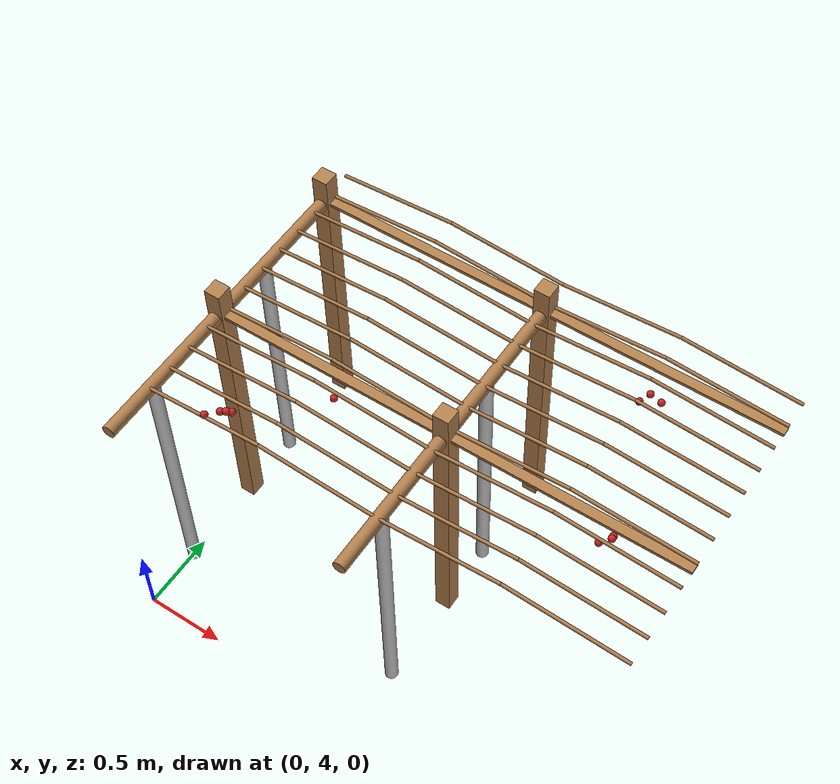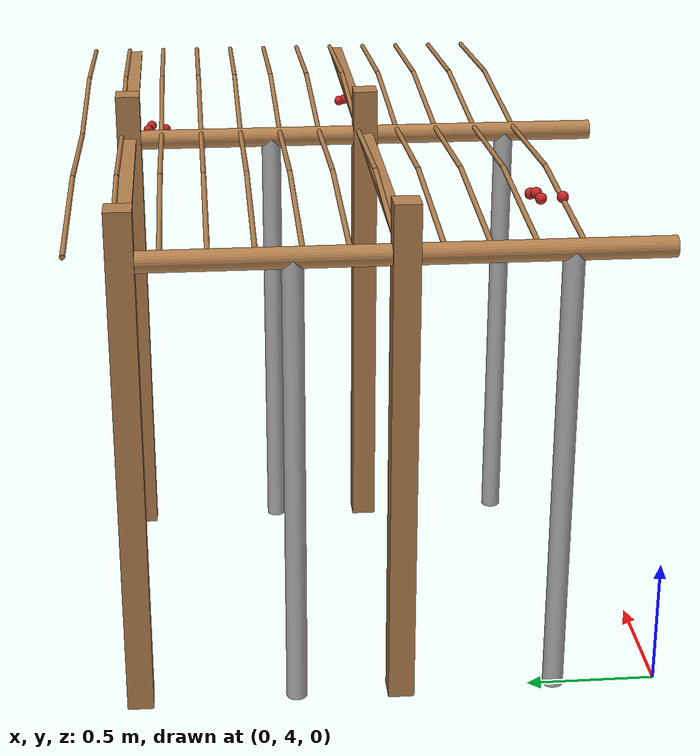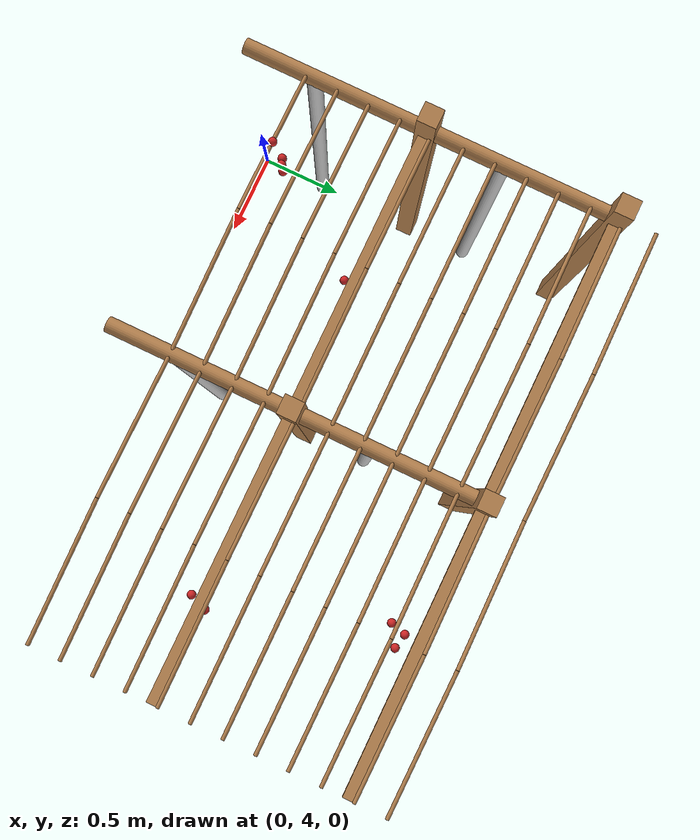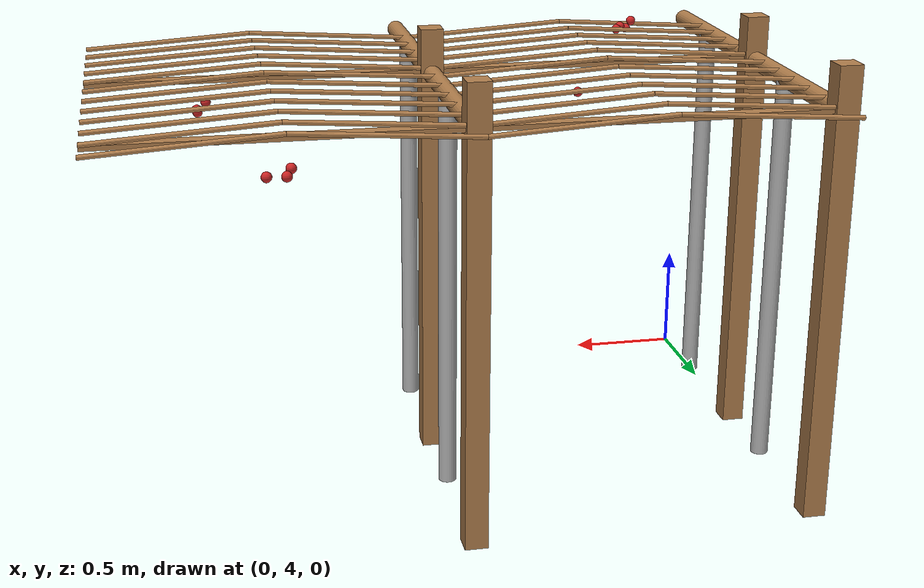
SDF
<sdf version="1.4">
 <model name="pergola">
  <include><name>post_5</name><pose>0.0 5.0 0 0 0 0</pose><uri>model://post</uri></include>
  <include><name>post_6</name><pose>0.0 6.0 0 0 0 0</pose><uri>model://post</uri></include>
  <include><name>post_16</name><pose>1.5 5.0 0 0 0 0</pose><uri>model://post</uri></include>
  <include><name>post_17</name><pose>1.5 6.0 0 0 0 0</pose><uri>model://post</uri></include>
  <link name="beam_5">
   <pose>0.75 5.0 1.81 0 0 0</pose>
   <collision name="collision"><geometry><box><size>1.5 0.06 0.02</size></box></geometry></collision>
   <visual name="visual">
    <geometry><box><size>1.5 0.06 0.02</size></box></geometry>
    <material><script><name>Gazebo/Wood</name></script></material>
   </visual>
   <inertial>
    <mass>5</mass>
    <inertia>
     <ixx>0.0016666666666666668</ixx>
     <ixy>0.0</ixy>
     <ixz>0.0</ixz>
     <iyy>0.9390000000000001</iyy>
     <iyz>0.0</iyz>
     <izz>0.9376666666666665</izz>
    </inertia>
   </inertial>
  </link>
  <link name="beam_6">
   <pose>0.75 6.0 1.81 0 0 0</pose>
   <collision name="collision"><geometry><box><size>1.5 0.06 0.02</size></box></geometry></collision>
   <visual name="visual">
    <geometry><box><size>1.5 0.06 0.02</size></box></geometry>
    <material><script><name>Gazebo/Wood</name></script></material>
   </visual>
   <inertial>
    <mass>5</mass>
    <inertia>
     <ixx>0.0016666666666666668</ixx>
     <ixy>0.0</ixy>
     <ixz>0.0</ixz>
     <iyy>0.9390000000000001</iyy>
     <iyz>0.0</iyz>
     <izz>0.9376666666666665</izz>
    </inertia>
   </inertial>
  </link>
  <link name="beam_16">
   <pose>2.25 5.0 1.81 0 0 0</pose>
   <collision name="collision"><geometry><box><size>1.5 0.06 0.02</size></box></geometry></collision>
   <visual name="visual">
    <geometry><box><size>1.5 0.06 0.02</size></box></geometry>
    <material><script><name>Gazebo/Wood</name></script></material>
   </visual>
   <inertial>
    <mass>5</mass>
    <inertia>
     <ixx>0.0016666666666666668</ixx>
     <ixy>0.0</ixy>
     <ixz>0.0</ixz>
     <iyy>0.9390000000000001</iyy>
     <iyz>0.0</iyz>
     <izz>0.9376666666666665</izz>
    </inertia>
   </inertial>
  </link>
  <link name="beam_17">
   <pose>2.25 6.0 1.81 0 0 0</pose>
   <collision name="collision"><geometry><box><size>1.5 0.06 0.02</size></box></geometry></collision>
   <visual name="visual">
    <geometry><box><size>1.5 0.06 0.02</size></box></geometry>
    <material><script><name>Gazebo/Wood</name></script></material>
   </visual>
   <inertial>
    <mass>5</mass>
    <inertia>
     <ixx>0.0016666666666666668</ixx>
     <ixy>0.0</ixy>
     <ixz>0.0</ixz>
     <iyy>0.9390000000000001</iyy>
     <iyz>0.0</iyz>
     <izz>0.9376666666666665</izz>
    </inertia>
   </inertial>
  </link>
  <include><name>tree_4</name><pose>0.0 4.4 0 0 0 0</pose><uri>model://tree_trunk</uri></include>
  <include><name>tree_5</name><pose>0.0 5.4 0 0 0 0</pose><uri>model://tree_trunk</uri></include>
  <include><name>tree_14</name><pose>1.5 4.4 0 0 0 0</pose><uri>model://tree_trunk</uri></include>
  <include><name>tree_15</name><pose>1.5 5.4 0 0 0 0</pose><uri>model://tree_trunk</uri></include>
  <link name="baseBranch_4">
   <pose>0.0 4.5 1.8 1.5707963267948966 0 0</pose>
   <collision name="collision">
    <geometry><cylinder><radius>0.04</radius><length>0.94</length></cylinder></geometry>
   </collision>
   <visual name="visual">
    <geometry><cylinder><radius>0.04</radius><length>0.94</length></cylinder></geometry>
    <material><script><name>Gazebo/WoodFloor</name></script></material>
   </visual>
   <inertial>
    <mass>10</mass>
    <inertia>
     <ixx>0.7403333333333334</ixx>
     <ixy>0.0</ixy>
     <ixz>0.0</ixz>
     <iyy>0.7403333333333334</iyy>
     <iyz>0.0</iyz>
     <izz>0.008</izz>
    </inertia>
   </inertial>
  </link>
  <link name="baseBranch_5">
   <pose>0.0 5.5 1.8 1.5707963267948966 0 0</pose>
   <collision name="collision">
    <geometry><cylinder><radius>0.04</radius><length>0.94</length></cylinder></geometry>
   </collision>
   <visual name="visual">
    <geometry><cylinder><radius>0.04</radius><length>0.94</length></cylinder></geometry>
    <material><script><name>Gazebo/WoodFloor</name></script></material>
   </visual>
   <inertial>
    <mass>10</mass>
    <inertia>
     <ixx>0.7403333333333334</ixx>
     <ixy>0.0</ixy>
     <ixz>0.0</ixz>
     <iyy>0.7403333333333334</iyy>
     <iyz>0.0</iyz>
     <izz>0.008</izz>
    </inertia>
   </inertial>
  </link>
  <link name="baseBranch_14">
   <pose>1.5 4.5 1.8 1.5707963267948966 0 0</pose>
   <collision name="collision">
    <geometry><cylinder><radius>0.04</radius><length>0.94</length></cylinder></geometry>
   </collision>
   <visual name="visual">
    <geometry><cylinder><radius>0.04</radius><length>0.94</length></cylinder></geometry>
    <material><script><name>Gazebo/WoodFloor</name></script></material>
   </visual>
   <inertial>
    <mass>10</mass>
    <inertia>
     <ixx>0.7403333333333334</ixx>
     <ixy>0.0</ixy>
     <ixz>0.0</ixz>
     <iyy>0.7403333333333334</iyy>
     <iyz>0.0</iyz>
     <izz>0.008</izz>
    </inertia>
   </inertial>
  </link>
  <link name="baseBranch_15">
   <pose>1.5 5.5 1.8 1.5707963267948966 0 0</pose>
   <collision name="collision">
    <geometry><cylinder><radius>0.04</radius><length>0.94</length></cylinder></geometry>
   </collision>
   <visual name="visual">
    <geometry><cylinder><radius>0.04</radius><length>0.94</length></cylinder></geometry>
    <material><script><name>Gazebo/WoodFloor</name></script></material>
   </visual>
   <inertial>
    <mass>10</mass>
    <inertia>
     <ixx>0.7403333333333334</ixx>
     <ixy>0.0</ixy>
     <ixz>0.0</ixz>
     <iyy>0.7403333333333334</iyy>
     <iyz>0.0</iyz>
     <izz>0.008</izz>
    </inertia>
   </inertial>
  </link>
  <link name="vine_52">
   <pose>0.375 4.363333333333333 1.85 0 1.5042281630190728 0</pose>
   <collision name="collision">
    <geometry><cylinder><radius>0.01</radius><length>0.7516648189186453</length></cylinder></geometry>
   </collision>
   <visual name="visual">
    <geometry><cylinder><radius>0.01</radius><length>0.7516648189186453</length></cylinder></geometry>
    <material><script><name>Gazebo/WoodFloor</name></script></material>
   </visual>
   <inertial>
    <mass>5</mass>
    <inertia>
     <ixx>0.23554166666666657</ixx>
     <ixy>0.0</ixy>
     <ixz>0.0</ixz>
     <iyy>0.23554166666666657</iyy>
     <iyz>0.0</iyz>
     <izz>0.00025</izz>
    </inertia>
   </inertial>
  </link>
  <link name="vine_53">
   <pose>1.125 4.363333333333333 1.85 0 -1.5042281630190728 0</pose>
   <collision name="collision">
    <geometry><cylinder><radius>0.01</radius><length>0.7516648189186453</length></cylinder></geometry>
   </collision>
   <visual name="visual">
    <geometry><cylinder><radius>0.01</radius><length>0.7516648189186453</length></cylinder></geometry>
    <material><script><name>Gazebo/WoodFloor</name></script></material>
   </visual>
   <inertial>
    <mass>5</mass>
    <inertia>
     <ixx>0.23554166666666657</ixx>
     <ixy>0.0</ixy>
     <ixz>0.0</ixz>
     <iyy>0.23554166666666657</iyy>
     <iyz>0.0</iyz>
     <izz>0.00025</izz>
    </inertia>
   </inertial>
  </link>
  <link name="vine_54">
   <pose>0.375 4.53 1.85 0 1.5042281630190728 0</pose>
   <collision name="collision">
    <geometry><cylinder><radius>0.01</radius><length>0.7516648189186453</length></cylinder></geometry>
   </collision>
   <visual name="visual">
    <geometry><cylinder><radius>0.01</radius><length>0.7516648189186453</length></cylinder></geometry>
    <material><script><name>Gazebo/WoodFloor</name></script></material>
   </visual>
   <inertial>
    <mass>5</mass>
    <inertia>
     <ixx>0.23554166666666657</ixx>
     <ixy>0.0</ixy>
     <ixz>0.0</ixz>
     <iyy>0.23554166666666657</iyy>
     <iyz>0.0</iyz>
     <izz>0.00025</izz>
    </inertia>
   </inertial>
  </link>
  <link name="vine_55">
   <pose>1.125 4.53 1.85 0 -1.5042281630190728 0</pose>
   <collision name="collision">
    <geometry><cylinder><radius>0.01</radius><length>0.7516648189186453</length></cylinder></geometry>
   </collision>
   <visual name="visual">
    <geometry><cylinder><radius>0.01</radius><length>0.7516648189186453</length></cylinder></geometry>
    <material><script><name>Gazebo/WoodFloor</name></script></material>
   </visual>
   <inertial>
    <mass>5</mass>
    <inertia>
     <ixx>0.23554166666666657</ixx>
     <ixy>0.0</ixy>
     <ixz>0.0</ixz>
     <iyy>0.23554166666666657</iyy>
     <iyz>0.0</iyz>
     <izz>0.00025</izz>
    </inertia>
   </inertial>
  </link>
  <link name="vine_56">
   <pose>0.375 4.696666666666666 1.85 0 1.5042281630190728 0</pose>
   <collision name="collision">
    <geometry><cylinder><radius>0.01</radius><length>0.7516648189186453</length></cylinder></geometry>
   </collision>
   <visual name="visual">
    <geometry><cylinder><radius>0.01</radius><length>0.7516648189186453</length></cylinder></geometry>
    <material><script><name>Gazebo/WoodFloor</name></script></material>
   </visual>
   <inertial>
    <mass>5</mass>
    <inertia>
     <ixx>0.23554166666666657</ixx>
     <ixy>0.0</ixy>
     <ixz>0.0</ixz>
     <iyy>0.23554166666666657</iyy>
     <iyz>0.0</iyz>
     <izz>0.00025</izz>
    </inertia>
   </inertial>
  </link>
  <link name="vine_57">
   <pose>1.125 4.696666666666666 1.85 0 -1.5042281630190728 0</pose>
   <collision name="collision">
    <geometry><cylinder><radius>0.01</radius><length>0.7516648189186453</length></cylinder></geometry>
   </collision>
   <visual name="visual">
    <geometry><cylinder><radius>0.01</radius><length>0.7516648189186453</length></cylinder></geometry>
    <material><script><name>Gazebo/WoodFloor</name></script></material>
   </visual>
   <inertial>
    <mass>5</mass>
    <inertia>
     <ixx>0.23554166666666657</ixx>
     <ixy>0.0</ixy>
     <ixz>0.0</ixz>
     <iyy>0.23554166666666657</iyy>
     <iyz>0.0</iyz>
     <izz>0.00025</izz>
    </inertia>
   </inertial>
  </link>
  <link name="vine_58">
   <pose>0.375 4.863333333333333 1.85 0 1.5042281630190728 0</pose>
   <collision name="collision">
    <geometry><cylinder><radius>0.01</radius><length>0.7516648189186453</length></cylinder></geometry>
   </collision>
   <visual name="visual">
    <geometry><cylinder><radius>0.01</radius><length>0.7516648189186453</length></cylinder></geometry>
    <material><script><name>Gazebo/WoodFloor</name></script></material>
   </visual>
   <inertial>
    <mass>5</mass>
    <inertia>
     <ixx>0.23554166666666657</ixx>
     <ixy>0.0</ixy>
     <ixz>0.0</ixz>
     <iyy>0.23554166666666657</iyy>
     <iyz>0.0</iyz>
     <izz>0.00025</izz>
    </inertia>
   </inertial>
  </link>
  <link name="vine_59">
   <pose>1.125 4.863333333333333 1.85 0 -1.5042281630190728 0</pose>
   <collision name="collision">
    <geometry><cylinder><radius>0.01</radius><length>0.7516648189186453</length></cylinder></geometry>
   </collision>
   <visual name="visual">
    <geometry><cylinder><radius>0.01</radius><length>0.7516648189186453</length></cylinder></geometry>
    <material><script><name>Gazebo/WoodFloor</name></script></material>
   </visual>
   <inertial>
    <mass>5</mass>
    <inertia>
     <ixx>0.23554166666666657</ixx>
     <ixy>0.0</ixy>
     <ixz>0.0</ixz>
     <iyy>0.23554166666666657</iyy>
     <iyz>0.0</iyz>
     <izz>0.00025</izz>
    </inertia>
   </inertial>
  </link>
  <link name="vine_60">
   <pose>0.375 5.03 1.85 0 1.5042281630190728 0</pose>
   <collision name="collision">
    <geometry><cylinder><radius>0.01</radius><length>0.7516648189186453</length></cylinder></geometry>
   </collision>
   <visual name="visual">
    <geometry><cylinder><radius>0.01</radius><length>0.7516648189186453</length></cylinder></geometry>
    <material><script><name>Gazebo/WoodFloor</name></script></material>
   </visual>
   <inertial>
    <mass>5</mass>
    <inertia>
     <ixx>0.23554166666666657</ixx>
     <ixy>0.0</ixy>
     <ixz>0.0</ixz>
     <iyy>0.23554166666666657</iyy>
     <iyz>0.0</iyz>
     <izz>0.00025</izz>
    </inertia>
   </inertial>
  </link>
  <link name="vine_61">
   <pose>1.125 5.03 1.85 0 -1.5042281630190728 0</pose>
   <collision name="collision">
    <geometry><cylinder><radius>0.01</radius><length>0.7516648189186453</length></cylinder></geometry>
   </collision>
   <visual name="visual">
    <geometry><cylinder><radius>0.01</radius><length>0.7516648189186453</length></cylinder></geometry>
    <material><script><name>Gazebo/WoodFloor</name></script></material>
   </visual>
   <inertial>
    <mass>5</mass>
    <inertia>
     <ixx>0.23554166666666657</ixx>
     <ixy>0.0</ixy>
     <ixz>0.0</ixz>
     <iyy>0.23554166666666657</iyy>
     <iyz>0.0</iyz>
     <izz>0.00025</izz>
    </inertia>
   </inertial>
  </link>
  <link name="vine_62">
   <pose>0.375 5.196666666666666 1.85 0 1.5042281630190728 0</pose>
   <collision name="collision">
    <geometry><cylinder><radius>0.01</radius><length>0.7516648189186453</length></cylinder></geometry>
   </collision>
   <visual name="visual">
    <geometry><cylinder><radius>0.01</radius><length>0.7516648189186453</length></cylinder></geometry>
    <material><script><name>Gazebo/WoodFloor</name></script></material>
   </visual>
   <inertial>
    <mass>5</mass>
    <inertia>
     <ixx>0.23554166666666657</ixx>
     <ixy>0.0</ixy>
     <ixz>0.0</ixz>
     <iyy>0.23554166666666657</iyy>
     <iyz>0.0</iyz>
     <izz>0.00025</izz>
    </inertia>
   </inertial>
  </link>
  <link name="vine_63">
   <pose>1.125 5.196666666666666 1.85 0 -1.5042281630190728 0</pose>
   <collision name="collision">
    <geometry><cylinder><radius>0.01</radius><length>0.7516648189186453</length></cylinder></geometry>
   </collision>
   <visual name="visual">
    <geometry><cylinder><radius>0.01</radius><length>0.7516648189186453</length></cylinder></geometry>
    <material><script><name>Gazebo/WoodFloor</name></script></material>
   </visual>
   <inertial>
    <mass>5</mass>
    <inertia>
     <ixx>0.23554166666666657</ixx>
     <ixy>0.0</ixy>
     <ixz>0.0</ixz>
     <iyy>0.23554166666666657</iyy>
     <iyz>0.0</iyz>
     <izz>0.00025</izz>
    </inertia>
   </inertial>
  </link>
  <link name="vine_64">
   <pose>0.375 5.363333333333333 1.85 0 1.5042281630190728 0</pose>
   <collision name="collision">
    <geometry><cylinder><radius>0.01</radius><length>0.7516648189186453</length></cylinder></geometry>
   </collision>
   <visual name="visual">
    <geometry><cylinder><radius>0.01</radius><length>0.7516648189186453</length></cylinder></geometry>
    <material><script><name>Gazebo/WoodFloor</name></script></material>
   </visual>
   <inertial>
    <mass>5</mass>
    <inertia>
     <ixx>0.23554166666666657</ixx>
     <ixy>0.0</ixy>
     <ixz>0.0</ixz>
     <iyy>0.23554166666666657</iyy>
     <iyz>0.0</iyz>
     <izz>0.00025</izz>
    </inertia>
   </inertial>
  </link>
  <link name="vine_65">
   <pose>1.125 5.363333333333333 1.85 0 -1.5042281630190728 0</pose>
   <collision name="collision">
    <geometry><cylinder><radius>0.01</radius><length>0.7516648189186453</length></cylinder></geometry>
   </collision>
   <visual name="visual">
    <geometry><cylinder><radius>0.01</radius><length>0.7516648189186453</length></cylinder></geometry>
    <material><script><name>Gazebo/WoodFloor</name></script></material>
   </visual>
   <inertial>
    <mass>5</mass>
    <inertia>
     <ixx>0.23554166666666657</ixx>
     <ixy>0.0</ixy>
     <ixz>0.0</ixz>
     <iyy>0.23554166666666657</iyy>
     <iyz>0.0</iyz>
     <izz>0.00025</izz>
    </inertia>
   </inertial>
  </link>
  <link name="vine_66">
   <pose>0.375 5.53 1.85 0 1.5042281630190728 0</pose>
   <collision name="collision">
    <geometry><cylinder><radius>0.01</radius><length>0.7516648189186453</length></cylinder></geometry>
   </collision>
   <visual name="visual">
    <geometry><cylinder><radius>0.01</radius><length>0.7516648189186453</length></cylinder></geometry>
    <material><script><name>Gazebo/WoodFloor</name></script></material>
   </visual>
   <inertial>
    <mass>5</mass>
    <inertia>
     <ixx>0.23554166666666657</ixx>
     <ixy>0.0</ixy>
     <ixz>0.0</ixz>
     <iyy>0.23554166666666657</iyy>
     <iyz>0.0</iyz>
     <izz>0.00025</izz>
    </inertia>
   </inertial>
  </link>
  <link name="vine_67">
   <pose>1.125 5.53 1.85 0 -1.5042281630190728 0</pose>
   <collision name="collision">
    <geometry><cylinder><radius>0.01</radius><length>0.7516648189186453</length></cylinder></geometry>
   </collision>
   <visual name="visual">
    <geometry><cylinder><radius>0.01</radius><length>0.7516648189186453</length></cylinder></geometry>
    <material><script><name>Gazebo/WoodFloor</name></script></material>
   </visual>
   <inertial>
    <mass>5</mass>
    <inertia>
     <ixx>0.23554166666666657</ixx>
     <ixy>0.0</ixy>
     <ixz>0.0</ixz>
     <iyy>0.23554166666666657</iyy>
     <iyz>0.0</iyz>
     <izz>0.00025</izz>
    </inertia>
   </inertial>
  </link>
  <link name="vine_68">
   <pose>0.375 5.696666666666666 1.85 0 1.5042281630190728 0</pose>
   <collision name="collision">
    <geometry><cylinder><radius>0.01</radius><length>0.7516648189186453</length></cylinder></geometry>
   </collision>
   <visual name="visual">
    <geometry><cylinder><radius>0.01</radius><length>0.7516648189186453</length></cylinder></geometry>
    <material><script><name>Gazebo/WoodFloor</name></script></material>
   </visual>
   <inertial>
    <mass>5</mass>
    <inertia>
     <ixx>0.23554166666666657</ixx>
     <ixy>0.0</ixy>
     <ixz>0.0</ixz>
     <iyy>0.23554166666666657</iyy>
     <iyz>0.0</iyz>
     <izz>0.00025</izz>
    </inertia>
   </inertial>
  </link>
  <link name="vine_69">
   <pose>1.125 5.696666666666666 1.85 0 -1.5042281630190728 0</pose>
   <collision name="collision">
    <geometry><cylinder><radius>0.01</radius><length>0.7516648189186453</length></cylinder></geometry>
   </collision>
   <visual name="visual">
    <geometry><cylinder><radius>0.01</radius><length>0.7516648189186453</length></cylinder></geometry>
    <material><script><name>Gazebo/WoodFloor</name></script></material>
   </visual>
   <inertial>
    <mass>5</mass>
    <inertia>
     <ixx>0.23554166666666657</ixx>
     <ixy>0.0</ixy>
     <ixz>0.0</ixz>
     <iyy>0.23554166666666657</iyy>
     <iyz>0.0</iyz>
     <izz>0.00025</izz>
    </inertia>
   </inertial>
  </link>
  <link name="vine_70">
   <pose>0.375 5.863333333333333 1.85 0 1.5042281630190728 0</pose>
   <collision name="collision">
    <geometry><cylinder><radius>0.01</radius><length>0.7516648189186453</length></cylinder></geometry>
   </collision>
   <visual name="visual">
    <geometry><cylinder><radius>0.01</radius><length>0.7516648189186453</length></cylinder></geometry>
    <material><script><name>Gazebo/WoodFloor</name></script></material>
   </visual>
   <inertial>
    <mass>5</mass>
    <inertia>
     <ixx>0.23554166666666657</ixx>
     <ixy>0.0</ixy>
     <ixz>0.0</ixz>
     <iyy>0.23554166666666657</iyy>
     <iyz>0.0</iyz>
     <izz>0.00025</izz>
    </inertia>
   </inertial>
  </link>
  <link name="vine_71">
   <pose>1.125 5.863333333333333 1.85 0 -1.5042281630190728 0</pose>
   <collision name="collision">
    <geometry><cylinder><radius>0.01</radius><length>0.7516648189186453</length></cylinder></geometry>
   </collision>
   <visual name="visual">
    <geometry><cylinder><radius>0.01</radius><length>0.7516648189186453</length></cylinder></geometry>
    <material><script><name>Gazebo/WoodFloor</name></script></material>
   </visual>
   <inertial>
    <mass>5</mass>
    <inertia>
     <ixx>0.23554166666666657</ixx>
     <ixy>0.0</ixy>
     <ixz>0.0</ixz>
     <iyy>0.23554166666666657</iyy>
     <iyz>0.0</iyz>
     <izz>0.00025</izz>
    </inertia>
   </inertial>
  </link>
  <link name="vine_72">
   <pose>0.375 6.03 1.85 0 1.5042281630190728 0</pose>
   <collision name="collision">
    <geometry><cylinder><radius>0.01</radius><length>0.7516648189186453</length></cylinder></geometry>
   </collision>
   <visual name="visual">
    <geometry><cylinder><radius>0.01</radius><length>0.7516648189186453</length></cylinder></geometry>
    <material><script><name>Gazebo/WoodFloor</name></script></material>
   </visual>
   <inertial>
    <mass>5</mass>
    <inertia>
     <ixx>0.23554166666666657</ixx>
     <ixy>0.0</ixy>
     <ixz>0.0</ixz>
     <iyy>0.23554166666666657</iyy>
     <iyz>0.0</iyz>
     <izz>0.00025</izz>
    </inertia>
   </inertial>
  </link>
  <link name="vine_73">
   <pose>1.125 6.03 1.85 0 -1.5042281630190728 0</pose>
   <collision name="collision">
    <geometry><cylinder><radius>0.01</radius><length>0.7516648189186453</length></cylinder></geometry>
   </collision>
   <visual name="visual">
    <geometry><cylinder><radius>0.01</radius><length>0.7516648189186453</length></cylinder></geometry>
    <material><script><name>Gazebo/WoodFloor</name></script></material>
   </visual>
   <inertial>
    <mass>5</mass>
    <inertia>
     <ixx>0.23554166666666657</ixx>
     <ixy>0.0</ixy>
     <ixz>0.0</ixz>
     <iyy>0.23554166666666657</iyy>
     <iyz>0.0</iyz>
     <izz>0.00025</izz>
    </inertia>
   </inertial>
  </link>
  <link name="vine_74">
   <pose>0.375 6.196666666666666 1.85 0 1.5042281630190728 0</pose>
   <collision name="collision">
    <geometry><cylinder><radius>0.01</radius><length>0.7516648189186453</length></cylinder></geometry>
   </collision>
   <visual name="visual">
    <geometry><cylinder><radius>0.01</radius><length>0.7516648189186453</length></cylinder></geometry>
    <material><script><name>Gazebo/WoodFloor</name></script></material>
   </visual>
   <inertial>
    <mass>5</mass>
    <inertia>
     <ixx>0.23554166666666657</ixx>
     <ixy>0.0</ixy>
     <ixz>0.0</ixz>
     <iyy>0.23554166666666657</iyy>
     <iyz>0.0</iyz>
     <izz>0.00025</izz>
    </inertia>
   </inertial>
  </link>
  <link name="vine_75">
   <pose>1.125 6.196666666666666 1.85 0 -1.5042281630190728 0</pose>
   <collision name="collision">
    <geometry><cylinder><radius>0.01</radius><length>0.7516648189186453</length></cylinder></geometry>
   </collision>
   <visual name="visual">
    <geometry><cylinder><radius>0.01</radius><length>0.7516648189186453</length></cylinder></geometry>
    <material><script><name>Gazebo/WoodFloor</name></script></material>
   </visual>
   <inertial>
    <mass>5</mass>
    <inertia>
     <ixx>0.23554166666666657</ixx>
     <ixy>0.0</ixy>
     <ixz>0.0</ixz>
     <iyy>0.23554166666666657</iyy>
     <iyz>0.0</iyz>
     <izz>0.00025</izz>
    </inertia>
   </inertial>
  </link>
  <link name="vine_172">
   <pose>1.875 4.363333333333333 1.85 0 1.5042281630190728 0</pose>
   <collision name="collision">
    <geometry><cylinder><radius>0.01</radius><length>0.7516648189186453</length></cylinder></geometry>
   </collision>
   <visual name="visual">
    <geometry><cylinder><radius>0.01</radius><length>0.7516648189186453</length></cylinder></geometry>
    <material><script><name>Gazebo/WoodFloor</name></script></material>
   </visual>
   <inertial>
    <mass>5</mass>
    <inertia>
     <ixx>0.23554166666666657</ixx>
     <ixy>0.0</ixy>
     <ixz>0.0</ixz>
     <iyy>0.23554166666666657</iyy>
     <iyz>0.0</iyz>
     <izz>0.00025</izz>
    </inertia>
   </inertial>
  </link>
  <link name="vine_173">
   <pose>2.625 4.363333333333333 1.85 0 -1.5042281630190728 0</pose>
   <collision name="collision">
    <geometry><cylinder><radius>0.01</radius><length>0.7516648189186453</length></cylinder></geometry>
   </collision>
   <visual name="visual">
    <geometry><cylinder><radius>0.01</radius><length>0.7516648189186453</length></cylinder></geometry>
    <material><script><name>Gazebo/WoodFloor</name></script></material>
   </visual>
   <inertial>
    <mass>5</mass>
    <inertia>
     <ixx>0.23554166666666657</ixx>
     <ixy>0.0</ixy>
     <ixz>0.0</ixz>
     <iyy>0.23554166666666657</iyy>
     <iyz>0.0</iyz>
     <izz>0.00025</izz>
    </inertia>
   </inertial>
  </link>
  <link name="vine_174">
   <pose>1.875 4.53 1.85 0 1.5042281630190728 0</pose>
   <collision name="collision">
    <geometry><cylinder><radius>0.01</radius><length>0.7516648189186453</length></cylinder></geometry>
   </collision>
   <visual name="visual">
    <geometry><cylinder><radius>0.01</radius><length>0.7516648189186453</length></cylinder></geometry>
    <material><script><name>Gazebo/WoodFloor</name></script></material>
   </visual>
   <inertial>
    <mass>5</mass>
    <inertia>
     <ixx>0.23554166666666657</ixx>
     <ixy>0.0</ixy>
     <ixz>0.0</ixz>
     <iyy>0.23554166666666657</iyy>
     <iyz>0.0</iyz>
     <izz>0.00025</izz>
    </inertia>
   </inertial>
  </link>
  <link name="vine_175">
   <pose>2.625 4.53 1.85 0 -1.5042281630190728 0</pose>
   <collision name="collision">
    <geometry><cylinder><radius>0.01</radius><length>0.7516648189186453</length></cylinder></geometry>
   </collision>
   <visual name="visual">
    <geometry><cylinder><radius>0.01</radius><length>0.7516648189186453</length></cylinder></geometry>
    <material><script><name>Gazebo/WoodFloor</name></script></material>
   </visual>
   <inertial>
    <mass>5</mass>
    <inertia>
     <ixx>0.23554166666666657</ixx>
     <ixy>0.0</ixy>
     <ixz>0.0</ixz>
     <iyy>0.23554166666666657</iyy>
     <iyz>0.0</iyz>
     <izz>0.00025</izz>
    </inertia>
   </inertial>
  </link>
  <link name="vine_176">
   <pose>1.875 4.696666666666666 1.85 0 1.5042281630190728 0</pose>
   <collision name="collision">
    <geometry><cylinder><radius>0.01</radius><length>0.7516648189186453</length></cylinder></geometry>
   </collision>
   <visual name="visual">
    <geometry><cylinder><radius>0.01</radius><length>0.7516648189186453</length></cylinder></geometry>
    <material><script><name>Gazebo/WoodFloor</name></script></material>
   </visual>
   <inertial>
    <mass>5</mass>
    <inertia>
     <ixx>0.23554166666666657</ixx>
     <ixy>0.0</ixy>
     <ixz>0.0</ixz>
     <iyy>0.23554166666666657</iyy>
     <iyz>0.0</iyz>
     <izz>0.00025</izz>
    </inertia>
   </inertial>
  </link>
  <link name="vine_177">
   <pose>2.625 4.696666666666666 1.85 0 -1.5042281630190728 0</pose>
   <collision name="collision">
    <geometry><cylinder><radius>0.01</radius><length>0.7516648189186453</length></cylinder></geometry>
   </collision>
   <visual name="visual">
    <geometry><cylinder><radius>0.01</radius><length>0.7516648189186453</length></cylinder></geometry>
    <material><script><name>Gazebo/WoodFloor</name></script></material>
   </visual>
   <inertial>
    <mass>5</mass>
    <inertia>
     <ixx>0.23554166666666657</ixx>
     <ixy>0.0</ixy>
     <ixz>0.0</ixz>
     <iyy>0.23554166666666657</iyy>
     <iyz>0.0</iyz>
     <izz>0.00025</izz>
    </inertia>
   </inertial>
  </link>
  <link name="vine_178">
   <pose>1.875 4.863333333333333 1.85 0 1.5042281630190728 0</pose>
   <collision name="collision">
    <geometry><cylinder><radius>0.01</radius><length>0.7516648189186453</length></cylinder></geometry>
   </collision>
   <visual name="visual">
    <geometry><cylinder><radius>0.01</radius><length>0.7516648189186453</length></cylinder></geometry>
    <material><script><name>Gazebo/WoodFloor</name></script></material>
   </visual>
   <inertial>
    <mass>5</mass>
    <inertia>
     <ixx>0.23554166666666657</ixx>
     <ixy>0.0</ixy>
     <ixz>0.0</ixz>
     <iyy>0.23554166666666657</iyy>
     <iyz>0.0</iyz>
     <izz>0.00025</izz>
    </inertia>
   </inertial>
  </link>
  <link name="vine_179">
   <pose>2.625 4.863333333333333 1.85 0 -1.5042281630190728 0</pose>
   <collision name="collision">
    <geometry><cylinder><radius>0.01</radius><length>0.7516648189186453</length></cylinder></geometry>
   </collision>
   <visual name="visual">
    <geometry><cylinder><radius>0.01</radius><length>0.7516648189186453</length></cylinder></geometry>
    <material><script><name>Gazebo/WoodFloor</name></script></material>
   </visual>
   <inertial>
    <mass>5</mass>
    <inertia>
     <ixx>0.23554166666666657</ixx>
     <ixy>0.0</ixy>
     <ixz>0.0</ixz>
     <iyy>0.23554166666666657</iyy>
     <iyz>0.0</iyz>
     <izz>0.00025</izz>
    </inertia>
   </inertial>
  </link>
  <link name="vine_180">
   <pose>1.875 5.03 1.85 0 1.5042281630190728 0</pose>
   <collision name="collision">
    <geometry><cylinder><radius>0.01</radius><length>0.7516648189186453</length></cylinder></geometry>
   </collision>
   <visual name="visual">
    <geometry><cylinder><radius>0.01</radius><length>0.7516648189186453</length></cylinder></geometry>
    <material><script><name>Gazebo/WoodFloor</name></script></material>
   </visual>
   <inertial>
    <mass>5</mass>
    <inertia>
     <ixx>0.23554166666666657</ixx>
     <ixy>0.0</ixy>
     <ixz>0.0</ixz>
     <iyy>0.23554166666666657</iyy>
     <iyz>0.0</iyz>
     <izz>0.00025</izz>
    </inertia>
   </inertial>
  </link>
  <link name="vine_181">
   <pose>2.625 5.03 1.85 0 -1.5042281630190728 0</pose>
   <collision name="collision">
    <geometry><cylinder><radius>0.01</radius><length>0.7516648189186453</length></cylinder></geometry>
   </collision>
   <visual name="visual">
    <geometry><cylinder><radius>0.01</radius><length>0.7516648189186453</length></cylinder></geometry>
    <material><script><name>Gazebo/WoodFloor</name></script></material>
   </visual>
   <inertial>
    <mass>5</mass>
    <inertia>
     <ixx>0.23554166666666657</ixx>
     <ixy>0.0</ixy>
     <ixz>0.0</ixz>
     <iyy>0.23554166666666657</iyy>
     <iyz>0.0</iyz>
     <izz>0.00025</izz>
    </inertia>
   </inertial>
  </link>
  <link name="vine_182">
   <pose>1.875 5.196666666666666 1.85 0 1.5042281630190728 0</pose>
   <collision name="collision">
    <geometry><cylinder><radius>0.01</radius><length>0.7516648189186453</length></cylinder></geometry>
   </collision>
   <visual name="visual">
    <geometry><cylinder><radius>0.01</radius><length>0.7516648189186453</length></cylinder></geometry>
    <material><script><name>Gazebo/WoodFloor</name></script></material>
   </visual>
   <inertial>
    <mass>5</mass>
    <inertia>
     <ixx>0.23554166666666657</ixx>
     <ixy>0.0</ixy>
     <ixz>0.0</ixz>
     <iyy>0.23554166666666657</iyy>
     <iyz>0.0</iyz>
     <izz>0.00025</izz>
    </inertia>
   </inertial>
  </link>
  <link name="vine_183">
   <pose>2.625 5.196666666666666 1.85 0 -1.5042281630190728 0</pose>
   <collision name="collision">
    <geometry><cylinder><radius>0.01</radius><length>0.7516648189186453</length></cylinder></geometry>
   </collision>
   <visual name="visual">
    <geometry><cylinder><radius>0.01</radius><length>0.7516648189186453</length></cylinder></geometry>
    <material><script><name>Gazebo/WoodFloor</name></script></material>
   </visual>
   <inertial>
    <mass>5</mass>
    <inertia>
     <ixx>0.23554166666666657</ixx>
     <ixy>0.0</ixy>
     <ixz>0.0</ixz>
     <iyy>0.23554166666666657</iyy>
     <iyz>0.0</iyz>
     <izz>0.00025</izz>
    </inertia>
   </inertial>
  </link>
  <link name="vine_184">
   <pose>1.875 5.363333333333333 1.85 0 1.5042281630190728 0</pose>
   <collision name="collision">
    <geometry><cylinder><radius>0.01</radius><length>0.7516648189186453</length></cylinder></geometry>
   </collision>
   <visual name="visual">
    <geometry><cylinder><radius>0.01</radius><length>0.7516648189186453</length></cylinder></geometry>
    <material><script><name>Gazebo/WoodFloor</name></script></material>
   </visual>
   <inertial>
    <mass>5</mass>
    <inertia>
     <ixx>0.23554166666666657</ixx>
     <ixy>0.0</ixy>
     <ixz>0.0</ixz>
     <iyy>0.23554166666666657</iyy>
     <iyz>0.0</iyz>
     <izz>0.00025</izz>
    </inertia>
   </inertial>
  </link>
  <link name="vine_185">
   <pose>2.625 5.363333333333333 1.85 0 -1.5042281630190728 0</pose>
   <collision name="collision">
    <geometry><cylinder><radius>0.01</radius><length>0.7516648189186453</length></cylinder></geometry>
   </collision>
   <visual name="visual">
    <geometry><cylinder><radius>0.01</radius><length>0.7516648189186453</length></cylinder></geometry>
    <material><script><name>Gazebo/WoodFloor</name></script></material>
   </visual>
   <inertial>
    <mass>5</mass>
    <inertia>
     <ixx>0.23554166666666657</ixx>
     <ixy>0.0</ixy>
     <ixz>0.0</ixz>
     <iyy>0.23554166666666657</iyy>
     <iyz>0.0</iyz>
     <izz>0.00025</izz>
    </inertia>
   </inertial>
  </link>
  <link name="vine_186">
   <pose>1.875 5.53 1.85 0 1.5042281630190728 0</pose>
   <collision name="collision">
    <geometry><cylinder><radius>0.01</radius><length>0.7516648189186453</length></cylinder></geometry>
   </collision>
   <visual name="visual">
    <geometry><cylinder><radius>0.01</radius><length>0.7516648189186453</length></cylinder></geometry>
    <material><script><name>Gazebo/WoodFloor</name></script></material>
   </visual>
   <inertial>
    <mass>5</mass>
    <inertia>
     <ixx>0.23554166666666657</ixx>
     <ixy>0.0</ixy>
     <ixz>0.0</ixz>
     <iyy>0.23554166666666657</iyy>
     <iyz>0.0</iyz>
     <izz>0.00025</izz>
    </inertia>
   </inertial>
  </link>
  <link name="vine_187">
   <pose>2.625 5.53 1.85 0 -1.5042281630190728 0</pose>
   <collision name="collision">
    <geometry><cylinder><radius>0.01</radius><length>0.7516648189186453</length></cylinder></geometry>
   </collision>
   <visual name="visual">
    <geometry><cylinder><radius>0.01</radius><length>0.7516648189186453</length></cylinder></geometry>
    <material><script><name>Gazebo/WoodFloor</name></script></material>
   </visual>
   <inertial>
    <mass>5</mass>
    <inertia>
     <ixx>0.23554166666666657</ixx>
     <ixy>0.0</ixy>
     <ixz>0.0</ixz>
     <iyy>0.23554166666666657</iyy>
     <iyz>0.0</iyz>
     <izz>0.00025</izz>
    </inertia>
   </inertial>
  </link>
  <link name="vine_188">
   <pose>1.875 5.696666666666666 1.85 0 1.5042281630190728 0</pose>
   <collision name="collision">
    <geometry><cylinder><radius>0.01</radius><length>0.7516648189186453</length></cylinder></geometry>
   </collision>
   <visual name="visual">
    <geometry><cylinder><radius>0.01</radius><length>0.7516648189186453</length></cylinder></geometry>
    <material><script><name>Gazebo/WoodFloor</name></script></material>
   </visual>
   <inertial>
    <mass>5</mass>
    <inertia>
     <ixx>0.23554166666666657</ixx>
     <ixy>0.0</ixy>
     <ixz>0.0</ixz>
     <iyy>0.23554166666666657</iyy>
     <iyz>0.0</iyz>
     <izz>0.00025</izz>
    </inertia>
   </inertial>
  </link>
  <link name="vine_189">
   <pose>2.625 5.696666666666666 1.85 0 -1.5042281630190728 0</pose>
   <collision name="collision">
    <geometry><cylinder><radius>0.01</radius><length>0.7516648189186453</length></cylinder></geometry>
   </collision>
   <visual name="visual">
    <geometry><cylinder><radius>0.01</radius><length>0.7516648189186453</length></cylinder></geometry>
    <material><script><name>Gazebo/WoodFloor</name></script></material>
   </visual>
   <inertial>
    <mass>5</mass>
    <inertia>
     <ixx>0.23554166666666657</ixx>
     <ixy>0.0</ixy>
     <ixz>0.0</ixz>
     <iyy>0.23554166666666657</iyy>
     <iyz>0.0</iyz>
     <izz>0.00025</izz>
    </inertia>
   </inertial>
  </link>
  <link name="vine_190">
   <pose>1.875 5.863333333333333 1.85 0 1.5042281630190728 0</pose>
   <collision name="collision">
    <geometry><cylinder><radius>0.01</radius><length>0.7516648189186453</length></cylinder></geometry>
   </collision>
   <visual name="visual">
    <geometry><cylinder><radius>0.01</radius><length>0.7516648189186453</length></cylinder></geometry>
    <material><script><name>Gazebo/WoodFloor</name></script></material>
   </visual>
   <inertial>
    <mass>5</mass>
    <inertia>
     <ixx>0.23554166666666657</ixx>
     <ixy>0.0</ixy>
     <ixz>0.0</ixz>
     <iyy>0.23554166666666657</iyy>
     <iyz>0.0</iyz>
     <izz>0.00025</izz>
    </inertia>
   </inertial>
  </link>
  <link name="vine_191">
   <pose>2.625 5.863333333333333 1.85 0 -1.5042281630190728 0</pose>
   <collision name="collision">
    <geometry><cylinder><radius>0.01</radius><length>0.7516648189186453</length></cylinder></geometry>
   </collision>
   <visual name="visual">
    <geometry><cylinder><radius>0.01</radius><length>0.7516648189186453</length></cylinder></geometry>
    <material><script><name>Gazebo/WoodFloor</name></script></material>
   </visual>
   <inertial>
    <mass>5</mass>
    <inertia>
     <ixx>0.23554166666666657</ixx>
     <ixy>0.0</ixy>
     <ixz>0.0</ixz>
     <iyy>0.23554166666666657</iyy>
     <iyz>0.0</iyz>
     <izz>0.00025</izz>
    </inertia>
   </inertial>
  </link>
  <link name="vine_192">
   <pose>1.875 6.03 1.85 0 1.5042281630190728 0</pose>
   <collision name="collision">
    <geometry><cylinder><radius>0.01</radius><length>0.7516648189186453</length></cylinder></geometry>
   </collision>
   <visual name="visual">
    <geometry><cylinder><radius>0.01</radius><length>0.7516648189186453</length></cylinder></geometry>
    <material><script><name>Gazebo/WoodFloor</name></script></material>
   </visual>
   <inertial>
    <mass>5</mass>
    <inertia>
     <ixx>0.23554166666666657</ixx>
     <ixy>0.0</ixy>
     <ixz>0.0</ixz>
     <iyy>0.23554166666666657</iyy>
     <iyz>0.0</iyz>
     <izz>0.00025</izz>
    </inertia>
   </inertial>
  </link>
  <link name="vine_193">
   <pose>2.625 6.03 1.85 0 -1.5042281630190728 0</pose>
   <collision name="collision">
    <geometry><cylinder><radius>0.01</radius><length>0.7516648189186453</length></cylinder></geometry>
   </collision>
   <visual name="visual">
    <geometry><cylinder><radius>0.01</radius><length>0.7516648189186453</length></cylinder></geometry>
    <material><script><name>Gazebo/WoodFloor</name></script></material>
   </visual>
   <inertial>
    <mass>5</mass>
    <inertia>
     <ixx>0.23554166666666657</ixx>
     <ixy>0.0</ixy>
     <ixz>0.0</ixz>
     <iyy>0.23554166666666657</iyy>
     <iyz>0.0</iyz>
     <izz>0.00025</izz>
    </inertia>
   </inertial>
  </link>
  <link name="vine_194">
   <pose>1.875 6.196666666666666 1.85 0 1.5042281630190728 0</pose>
   <collision name="collision">
    <geometry><cylinder><radius>0.01</radius><length>0.7516648189186453</length></cylinder></geometry>
   </collision>
   <visual name="visual">
    <geometry><cylinder><radius>0.01</radius><length>0.7516648189186453</length></cylinder></geometry>
    <material><script><name>Gazebo/WoodFloor</name></script></material>
   </visual>
   <inertial>
    <mass>5</mass>
    <inertia>
     <ixx>0.23554166666666657</ixx>
     <ixy>0.0</ixy>
     <ixz>0.0</ixz>
     <iyy>0.23554166666666657</iyy>
     <iyz>0.0</iyz>
     <izz>0.00025</izz>
    </inertia>
   </inertial>
  </link>
  <link name="vine_195">
   <pose>2.625 6.196666666666666 1.85 0 -1.5042281630190728 0</pose>
   <collision name="collision">
    <geometry><cylinder><radius>0.01</radius><length>0.7516648189186453</length></cylinder></geometry>
   </collision>
   <visual name="visual">
    <geometry><cylinder><radius>0.01</radius><length>0.7516648189186453</length></cylinder></geometry>
    <material><script><name>Gazebo/WoodFloor</name></script></material>
   </visual>
   <inertial>
    <mass>5</mass>
    <inertia>
     <ixx>0.23554166666666657</ixx>
     <ixy>0.0</ixy>
     <ixz>0.0</ixz>
     <iyy>0.23554166666666657</iyy>
     <iyz>0.0</iyz>
     <izz>0.00025</izz>
    </inertia>
   </inertial>
  </link>
  <link name="fruit_32">
   <pose>2.4879579547308865 4.934381982036358 1.6932825521679153 0 0 0</pose>
   <collision name="fruit_collision_32"><geometry><sphere><radius>0.022</radius></sphere></geometry></collision>
   <visual name="visual">
    <geometry><sphere><radius>0.022</radius></sphere></geometry>
    <material><script><name>Gazebo/Red</name></script></material>
   </visual>
   <inertial>
    <mass>0.05</mass>
    <inertia>
     <ixx>9.679999999999999e-06</ixx>
     <ixy>0.0</ixy>
     <ixz>0.0</ixz>
     <iyy>9.679999999999999e-06</iyy>
     <iyz>0.0</iyz>
     <izz>9.679999999999999e-06</izz>
    </inertia>
   </inertial>
   <sensor name="fruit_contact_32" type="contact">
    <contact><collision>fruit_collision_32</collision></contact>
   </sensor>
  </link>
  <link name="fruit_55">
   <pose>0.8064963559936561 4.940191402298692 1.6646521342356413 0 0 0</pose>
   <collision name="fruit_collision_55"><geometry><sphere><radius>0.022</radius></sphere></geometry></collision>
   <visual name="visual">
    <geometry><sphere><radius>0.022</radius></sphere></geometry>
    <material><script><name>Gazebo/Red</name></script></material>
   </visual>
   <inertial>
    <mass>0.05</mass>
    <inertia>
     <ixx>9.679999999999999e-06</ixx>
     <ixy>0.0</ixy>
     <ixz>0.0</ixz>
     <iyy>9.679999999999999e-06</iyy>
     <iyz>0.0</iyz>
     <izz>9.679999999999999e-06</izz>
    </inertia>
   </inertial>
   <sensor name="fruit_contact_55" type="contact">
    <contact><collision>fruit_collision_55</collision></contact>
   </sensor>
  </link>
  <link name="fruit_61">
   <pose>0.3883840657125757 4.366931765037784 1.865390580707005 0 0 0</pose>
   <collision name="fruit_collision_61"><geometry><sphere><radius>0.022</radius></sphere></geometry></collision>
   <visual name="visual">
    <geometry><sphere><radius>0.022</radius></sphere></geometry>
    <material><script><name>Gazebo/Red</name></script></material>
   </visual>
   <inertial>
    <mass>0.05</mass>
    <inertia>
     <ixx>9.679999999999999e-06</ixx>
     <ixy>0.0</ixy>
     <ixz>0.0</ixz>
     <iyy>9.679999999999999e-06</iyy>
     <iyz>0.0</iyz>
     <izz>9.679999999999999e-06</izz>
    </inertia>
   </inertial>
   <sensor name="fruit_contact_61" type="contact">
    <contact><collision>fruit_collision_61</collision></contact>
   </sensor>
  </link>
  <link name="fruit_76">
   <pose>2.205452623603926 5.854697421078316 1.6427315359117767 0 0 0</pose>
   <collision name="fruit_collision_76"><geometry><sphere><radius>0.022</radius></sphere></geometry></collision>
   <visual name="visual">
    <geometry><sphere><radius>0.022</radius></sphere></geometry>
    <material><script><name>Gazebo/Red</name></script></material>
   </visual>
   <inertial>
    <mass>0.05</mass>
    <inertia>
     <ixx>9.679999999999999e-06</ixx>
     <ixy>0.0</ixy>
     <ixz>0.0</ixz>
     <iyy>9.679999999999999e-06</iyy>
     <iyz>0.0</iyz>
     <izz>9.679999999999999e-06</izz>
    </inertia>
   </inertial>
   <sensor name="fruit_contact_76" type="contact">
    <contact><collision>fruit_collision_76</collision></contact>
   </sensor>
  </link>
  <link name="fruit_137">
   <pose>2.5297244898218225 4.999741140093982 1.6774893200899357 0 0 0</pose>
   <collision name="fruit_collision_137"><geometry><sphere><radius>0.022</radius></sphere></geometry></collision>
   <visual name="visual">
    <geometry><sphere><radius>0.022</radius></sphere></geometry>
    <material><script><name>Gazebo/Red</name></script></material>
   </visual>
   <inertial>
    <mass>0.05</mass>
    <inertia>
     <ixx>9.679999999999999e-06</ixx>
     <ixy>0.0</ixy>
     <ixz>0.0</ixz>
     <iyy>9.679999999999999e-06</iyy>
     <iyz>0.0</iyz>
     <izz>9.679999999999999e-06</izz>
    </inertia>
   </inertial>
   <sensor name="fruit_contact_137" type="contact">
    <contact><collision>fruit_collision_137</collision></contact>
   </sensor>
  </link>
  <link name="fruit_233">
   <pose>2.307402779242554 5.92057352568039 1.631778664770604 0 0 0</pose>
   <collision name="fruit_collision_233"><geometry><sphere><radius>0.022</radius></sphere></geometry></collision>
   <visual name="visual">
    <geometry><sphere><radius>0.022</radius></sphere></geometry>
    <material><script><name>Gazebo/Red</name></script></material>
   </visual>
   <inertial>
    <mass>0.05</mass>
    <inertia>
     <ixx>9.679999999999999e-06</ixx>
     <ixy>0.0</ixy>
     <ixz>0.0</ixz>
     <iyy>9.679999999999999e-06</iyy>
     <iyz>0.0</iyz>
     <izz>9.679999999999999e-06</izz>
    </inertia>
   </inertial>
   <sensor name="fruit_contact_233" type="contact">
    <contact><collision>fruit_collision_233</collision></contact>
   </sensor>
  </link>
  <link name="fruit_350">
   <pose>0.43663906103773 4.4392222561436 1.845766033536218 0 0 0</pose>
   <collision name="fruit_collision_350"><geometry><sphere><radius>0.022</radius></sphere></geometry></collision>
   <visual name="visual">
    <geometry><sphere><radius>0.022</radius></sphere></geometry>
    <material><script><name>Gazebo/Red</name></script></material>
   </visual>
   <inertial>
    <mass>0.05</mass>
    <inertia>
     <ixx>9.679999999999999e-06</ixx>
     <ixy>0.0</ixy>
     <ixz>0.0</ixz>
     <iyy>9.679999999999999e-06</iyy>
     <iyz>0.0</iyz>
     <izz>9.679999999999999e-06</izz>
    </inertia>
   </inertial>
   <sensor name="fruit_contact_350" type="contact">
    <contact><collision>fruit_collision_350</collision></contact>
   </sensor>
  </link>
  <link name="fruit_443">
   <pose>0.4916746761478804 4.4696754764741 1.8485304819110353 0 0 0</pose>
   <collision name="fruit_collision_443"><geometry><sphere><radius>0.022</radius></sphere></geometry></collision>
   <visual name="visual">
    <geometry><sphere><radius>0.022</radius></sphere></geometry>
    <material><script><name>Gazebo/Red</name></script></material>
   </visual>
   <inertial>
    <mass>0.05</mass>
    <inertia>
     <ixx>9.679999999999999e-06</ixx>
     <ixy>0.0</ixy>
     <ixz>0.0</ixz>
     <iyy>9.679999999999999e-06</iyy>
     <iyz>0.0</iyz>
     <izz>9.679999999999999e-06</izz>
    </inertia>
   </inertial>
   <sensor name="fruit_contact_443" type="contact">
    <contact><collision>fruit_collision_443</collision></contact>
   </sensor>
  </link>
  <link name="fruit_449">
   <pose>2.229719260191071 5.935728923963576 1.6346428479821997 0 0 0</pose>
   <collision name="fruit_collision_449"><geometry><sphere><radius>0.022</radius></sphere></geometry></collision>
   <visual name="visual">
    <geometry><sphere><radius>0.022</radius></sphere></geometry>
    <material><script><name>Gazebo/Red</name></script></material>
   </visual>
   <inertial>
    <mass>0.05</mass>
    <inertia>
     <ixx>9.679999999999999e-06</ixx>
     <ixy>0.0</ixy>
     <ixz>0.0</ixz>
     <iyy>9.679999999999999e-06</iyy>
     <iyz>0.0</iyz>
     <izz>9.679999999999999e-06</izz>
    </inertia>
   </inertial>
   <sensor name="fruit_contact_449" type="contact">
    <contact><collision>fruit_collision_449</collision></contact>
   </sensor>
  </link>
  <link name="fruit_450">
   <pose>0.46902435492563443 4.452080589919193 1.857624578392569 0 0 0</pose>
   <collision name="fruit_collision_450"><geometry><sphere><radius>0.022</radius></sphere></geometry></collision>
   <visual name="visual">
    <geometry><sphere><radius>0.022</radius></sphere></geometry>
    <material><script><name>Gazebo/Red</name></script></material>
   </visual>
   <inertial>
    <mass>0.05</mass>
    <inertia>
     <ixx>9.679999999999999e-06</ixx>
     <ixy>0.0</ixy>
     <ixz>0.0</ixz>
     <iyy>9.679999999999999e-06</iyy>
     <iyz>0.0</iyz>
     <izz>9.679999999999999e-06</izz>
    </inertia>
   </inertial>
   <sensor name="fruit_contact_450" type="contact">
    <contact><collision>fruit_collision_450</collision></contact>
   </sensor>
  </link>
  <link name="fruit_458">
   <pose>2.5280292553998893 5.021149501218778 1.6724441203617293 0 0 0</pose>
   <collision name="fruit_collision_458"><geometry><sphere><radius>0.022</radius></sphere></geometry></collision>
   <visual name="visual">
    <geometry><sphere><radius>0.022</radius></sphere></geometry>
    <material><script><name>Gazebo/Red</name></script></material>
   </visual>
   <inertial>
    <mass>0.05</mass>
    <inertia>
     <ixx>9.679999999999999e-06</ixx>
     <ixy>0.0</ixy>
     <ixz>0.0</ixz>
     <iyy>9.679999999999999e-06</iyy>
     <iyz>0.0</iyz>
     <izz>9.679999999999999e-06</izz>
    </inertia>
   </inertial>
   <sensor name="fruit_contact_458" type="contact">
    <contact><collision>fruit_collision_458</collision></contact>
   </sensor>
  </link>
 </model>
</sdf>
